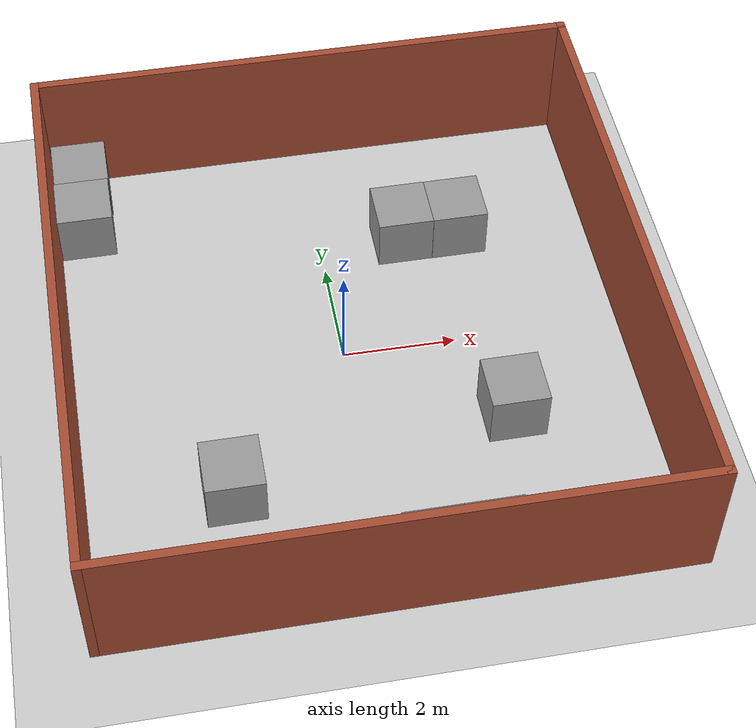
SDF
<sdf version="1.7">
 <world name="default">
  <light name="sun" type="directional">
   <pose>0 0 10 0 -0 0</pose>
   <diffuse>0.8 0.8 0.8 1</diffuse>
   <specular>0.2 0.2 0.2 1</specular>
   <attenuation>
    <range>1000</range>
    <constant>0.9</constant>
    <linear>0.01</linear>
    <quadratic>0.001</quadratic>
   </attenuation>
   <direction>-0.5 0.1 -0.9</direction>
   <spot><inner_angle>0</inner_angle><outer_angle>0</outer_angle><falloff>0</falloff></spot>
  </light>
  <model name="ground_plane">
   <static>1</static>
   <link name="link">
    <collision name="collision">
     <geometry><plane><normal>0 0 1</normal><size>100 100</size></plane></geometry>
     <surface><friction><ode><mu>100</mu><mu2>50</mu2></ode></friction></surface>
    </collision>
    <visual name="visual">
     <cast_shadows>0</cast_shadows>
     <geometry><plane><normal>0 0 1</normal><size>100 100</size></plane></geometry>
     <material>
      <script><uri>file://media/materials/scripts/gazebo.material</uri><name>Gazebo/Grey</name></script>
     </material>
    </visual>
   </link>
  </model>
  <gravity>0 0 -9.8</gravity>
  <magnetic_field>6e-06 2.3e-05 -4.2e-05</magnetic_field>
  <atmosphere type="adiabatic"/>
  <physics type="ode">
   <max_step_size>0.001</max_step_size>
   <real_time_factor>1</real_time_factor>
   <real_time_update_rate>1000</real_time_update_rate>
  </physics>
  <scene><ambient>0.4 0.4 0.4 1</ambient><background>0.7 0.7 0.7 1</background><shadows>1</shadows></scene>
  <audio><device>default</device></audio>
  <spherical_coordinates>
   <surface_model>EARTH_WGS84</surface_model>
   <latitude_deg>0</latitude_deg>
   <longitude_deg>0</longitude_deg>
   <elevation>0</elevation>
   <heading_deg>0</heading_deg>
  </spherical_coordinates>
  <model name="box_home">
   <pose>0.109191 0.003362 0 0 -0 0</pose>
   <link name="Wall_1">
    <collision name="Wall_1_Collision">
     <geometry><box><size>10 0.15 2.5</size></box></geometry>
     <pose>0 0 1.25 0 -0 0</pose>
    </collision>
    <visual name="Wall_1_Visual">
     <pose>0 0 1.25 0 -0 0</pose>
     <geometry><box><size>10 0.15 2.5</size></box></geometry>
     <material>
      <script><uri>file://media/materials/scripts/gazebo.material</uri><name>Gazebo/Bricks</name></script>
      <ambient>1 1 1 1</ambient>
     </material>
     <meta><layer>0</layer></meta>
    </visual>
    <pose>0 5.175 0 0 -0 0</pose>
   </link>
   <link name="Wall_2">
    <collision name="Wall_2_Collision">
     <geometry><box><size>10.5 0.15 2.5</size></box></geometry>
     <pose>0 0 1.25 0 -0 0</pose>
    </collision>
    <visual name="Wall_2_Visual">
     <pose>0 0 1.25 0 -0 0</pose>
     <geometry><box><size>10.5 0.15 2.5</size></box></geometry>
     <material>
      <script><uri>file://media/materials/scripts/gazebo.material</uri><name>Gazebo/Bricks</name></script>
      <ambient>1 1 1 1</ambient>
     </material>
     <meta><layer>0</layer></meta>
    </visual>
    <pose>4.925 0 0 0 -0 -1.5708</pose>
   </link>
   <link name="Wall_3">
    <collision name="Wall_3_Collision">
     <geometry><box><size>10 0.15 2.5</size></box></geometry>
     <pose>0 0 1.25 0 -0 0</pose>
    </collision>
    <visual name="Wall_3_Visual">
     <pose>0 0 1.25 0 -0 0</pose>
     <geometry><box><size>10 0.15 2.5</size></box></geometry>
     <material>
      <script><uri>file://media/materials/scripts/gazebo.material</uri><name>Gazebo/Bricks</name></script>
      <ambient>1 1 1 1</ambient>
     </material>
     <meta><layer>0</layer></meta>
    </visual>
    <pose>0 -5.175 0 0 -0 3.14159</pose>
   </link>
   <link name="Wall_4">
    <collision name="Wall_4_Collision">
     <geometry><box><size>10.5 0.15 2.5</size></box></geometry>
     <pose>0 0 1.25 0 -0 0</pose>
    </collision>
    <visual name="Wall_4_Visual">
     <pose>0 0 1.25 0 -0 0</pose>
     <geometry><box><size>10.5 0.15 2.5</size></box></geometry>
     <material>
      <script><uri>file://media/materials/scripts/gazebo.material</uri><name>Gazebo/Bricks</name></script>
      <ambient>1 1 1 1</ambient>
     </material>
     <meta><layer>0</layer></meta>
    </visual>
    <pose>-4.925 0 0 0 -0 1.5708</pose>
   </link>
   <static>1</static>
  </model>
  <model name="unit_box">
   <pose>-2.30205 -2.68659 0.499995 -1e-05 -0 -0</pose>
   <link name="link">
    <inertial>
     <mass>1</mass>
     <inertia>
      <ixx>0.166667</ixx>
      <ixy>0</ixy>
      <ixz>0</ixz>
      <iyy>0.166667</iyy>
      <iyz>0</iyz>
      <izz>0.166667</izz>
     </inertia>
    </inertial>
    <collision name="collision"><geometry><box><size>1 1 1</size></box></geometry></collision>
    <visual name="visual">
     <geometry><box><size>1 1 1</size></box></geometry>
     <material>
      <script><name>Gazebo/Grey</name><uri>file://media/materials/scripts/gazebo.material</uri></script>
     </material>
    </visual>
   </link>
  </model>
  <model name="unit_box_0">
   <pose>2.61646 -1.7894 0.499995 0 1e-05 0</pose>
   <link name="link">
    <inertial>
     <mass>1</mass>
     <inertia>
      <ixx>0.166667</ixx>
      <ixy>0</ixy>
      <ixz>0</ixz>
      <iyy>0.166667</iyy>
      <iyz>0</iyz>
      <izz>0.166667</izz>
     </inertia>
    </inertial>
    <collision name="collision"><geometry><box><size>1 1 1</size></box></geometry></collision>
    <visual name="visual">
     <geometry><box><size>1 1 1</size></box></geometry>
     <material>
      <script><name>Gazebo/Grey</name><uri>file://media/materials/scripts/gazebo.material</uri></script>
     </material>
    </visual>
   </link>
  </model>
  <model name="unit_box_1">
   <pose>-4.21886 4.6033 0.499995 0 1e-05 0.000131</pose>
   <link name="link">
    <inertial>
     <mass>1</mass>
     <inertia>
      <ixx>0.166667</ixx>
      <ixy>0</ixy>
      <ixz>0</ixz>
      <iyy>0.166667</iyy>
      <iyz>0</iyz>
      <izz>0.166667</izz>
     </inertia>
    </inertial>
    <collision name="collision"><geometry><box><size>1 1 1</size></box></geometry></collision>
    <visual name="visual">
     <geometry><box><size>1 1 1</size></box></geometry>
     <material>
      <script><name>Gazebo/Grey</name><uri>file://media/materials/scripts/gazebo.material</uri></script>
     </material>
    </visual>
   </link>
  </model>
  <model name="unit_box_2">
   <pose>-4.23242 3.60329 0.499995 -1e-05 -0 0.000132</pose>
   <link name="link">
    <inertial>
     <mass>1</mass>
     <inertia>
      <ixx>0.166667</ixx>
      <ixy>0</ixy>
      <ixz>0</ixz>
      <iyy>0.166667</iyy>
      <iyz>0</iyz>
      <izz>0.166667</izz>
     </inertia>
    </inertial>
    <collision name="collision"><geometry><box><size>1 1 1</size></box></geometry></collision>
    <visual name="visual">
     <geometry><box><size>1 1 1</size></box></geometry>
     <material>
      <script><name>Gazebo/Grey</name><uri>file://media/materials/scripts/gazebo.material</uri></script>
     </material>
    </visual>
   </link>
  </model>
  <model name="unit_box_3">
   <pose>0.722792 -4.59663 0.499995 0 1e-05 -1.4e-05</pose>
   <link name="link">
    <inertial>
     <mass>1</mass>
     <inertia>
      <ixx>0.166667</ixx>
      <ixy>0</ixy>
      <ixz>0</ixz>
      <iyy>0.166667</iyy>
      <iyz>0</iyz>
      <izz>0.166667</izz>
     </inertia>
    </inertial>
    <collision name="collision"><geometry><box><size>1 1 1</size></box></geometry></collision>
    <visual name="visual">
     <geometry><box><size>1 1 1</size></box></geometry>
     <material>
      <script><name>Gazebo/Grey</name><uri>file://media/materials/scripts/gazebo.material</uri></script>
     </material>
    </visual>
   </link>
  </model>
  <model name="unit_box_4">
   <pose>1.72278 -4.59664 0.499995 0 -1e-05 -1.1e-05</pose>
   <link name="link">
    <inertial>
     <mass>1</mass>
     <inertia>
      <ixx>0.166667</ixx>
      <ixy>0</ixy>
      <ixz>0</ixz>
      <iyy>0.166667</iyy>
      <iyz>0</iyz>
      <izz>0.166667</izz>
     </inertia>
    </inertial>
    <collision name="collision"><geometry><box><size>1 1 1</size></box></geometry></collision>
    <visual name="visual">
     <geometry><box><size>1 1 1</size></box></geometry>
     <material>
      <script><name>Gazebo/Grey</name><uri>file://media/materials/scripts/gazebo.material</uri></script>
     </material>
    </visual>
   </link>
  </model>
  <model name="unit_box_5">
   <pose>2.50287 2.5011 0.5 -0 -0 -8e-06</pose>
   <link name="link">
    <inertial>
     <mass>1</mass>
     <inertia>
      <ixx>0.166667</ixx>
      <ixy>0</ixy>
      <ixz>0</ixz>
      <iyy>0.166667</iyy>
      <iyz>0</iyz>
      <izz>0.166667</izz>
     </inertia>
    </inertial>
    <collision name="collision"><geometry><box><size>1 1 1</size></box></geometry></collision>
    <visual name="visual">
     <geometry><box><size>1 1 1</size></box></geometry>
     <material>
      <script><name>Gazebo/Grey</name><uri>file://media/materials/scripts/gazebo.material</uri></script>
     </material>
    </visual>
   </link>
  </model>
  <model name="unit_box_6">
   <pose>1.50287 2.50609 0.5 0 0 -6e-06</pose>
   <link name="link">
    <inertial>
     <mass>1</mass>
     <inertia>
      <ixx>0.166667</ixx>
      <ixy>0</ixy>
      <ixz>0</ixz>
      <iyy>0.166667</iyy>
      <iyz>0</iyz>
      <izz>0.166667</izz>
     </inertia>
    </inertial>
    <collision name="collision"><geometry><box><size>1 1 1</size></box></geometry></collision>
    <visual name="visual">
     <geometry><box><size>1 1 1</size></box></geometry>
     <material>
      <script><name>Gazebo/Grey</name><uri>file://media/materials/scripts/gazebo.material</uri></script>
     </material>
    </visual>
   </link>
  </model>
 </world>
</sdf>
